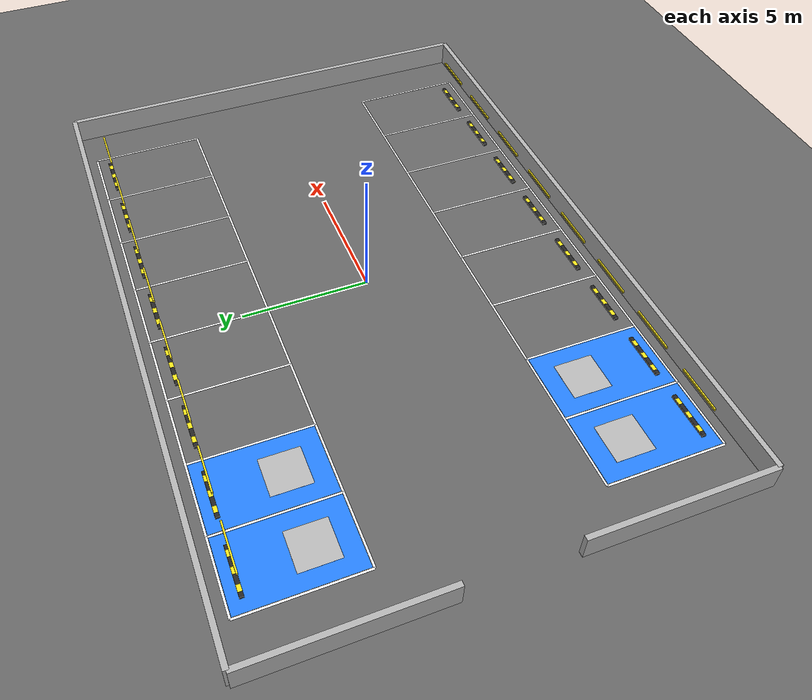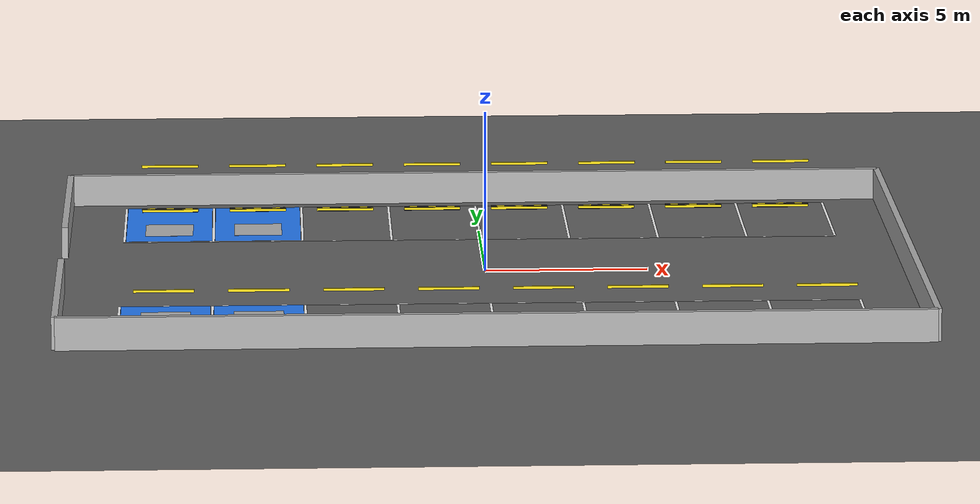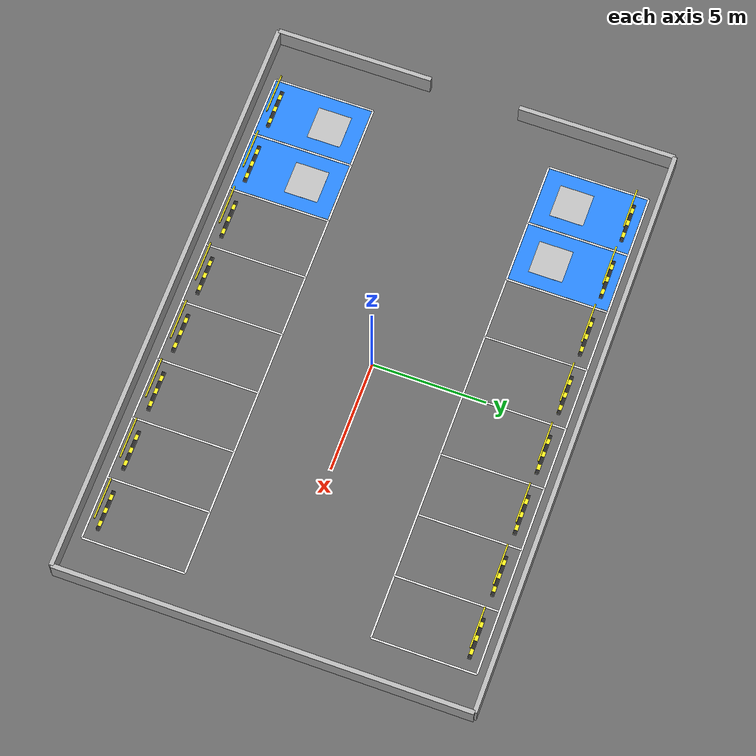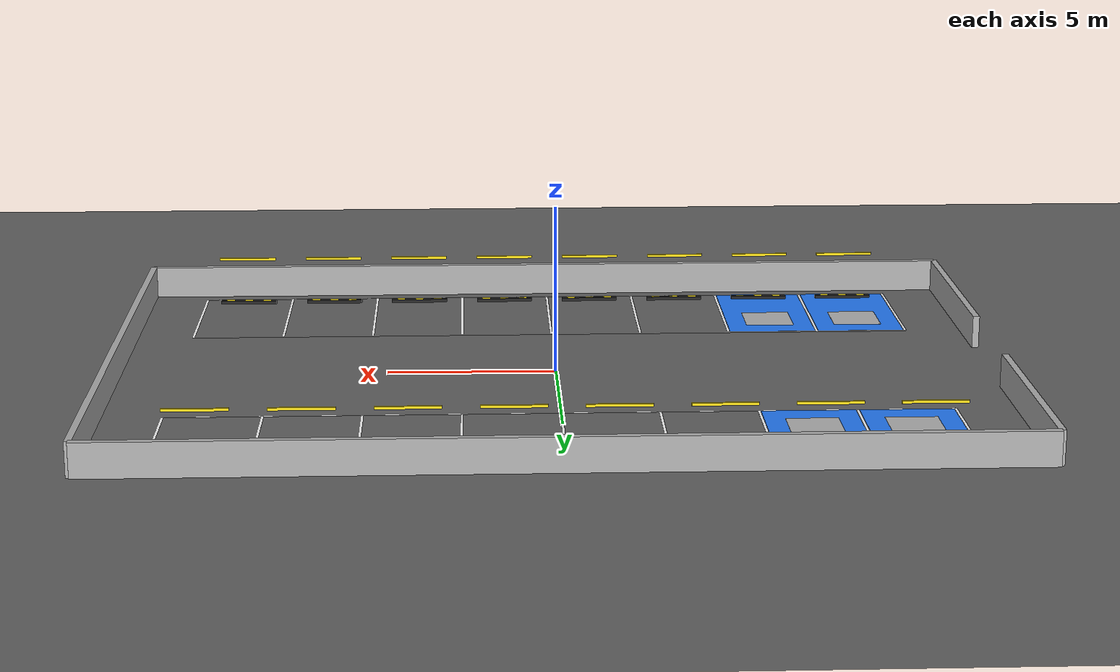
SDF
<sdf version="1.6">
 <world name="parking_lot">
  <physics type="ode">
   <real_time_update_rate>1000.0</real_time_update_rate>
   <max_step_size>0.001</max_step_size>
   <real_time_factor>1</real_time_factor>
  </physics>
  <include><uri>model://sun</uri></include>
  <model name="ground_plane">
   <static>true</static>
   <link name="link">
    <collision name="collision">
     <geometry><plane><normal>0 0 1</normal><size>30 20</size></plane></geometry>
    </collision>
    <visual name="visual">
     <geometry><plane><normal>0 0 1</normal><size>30 20</size></plane></geometry>
     <material><ambient>0.3 0.3 0.3 1</ambient><diffuse>0.4 0.4 0.4 1</diffuse></material>
    </visual>
   </link>
  </model>
  <model name="wall_north">
   <static>true</static>
   <pose>0 9.0 0.5 0 0 0</pose>
   <link name="link">
    <collision name="collision"><geometry><box><size>26 0.2 1.0</size></box></geometry></collision>
    <visual name="visual">
     <geometry><box><size>26 0.2 1.0</size></box></geometry>
     <material><ambient>0.6 0.6 0.6 1</ambient><diffuse>0.7 0.7 0.7 1</diffuse></material>
    </visual>
   </link>
  </model>
  <model name="wall_south">
   <static>true</static>
   <pose>0 -9.0 0.5 0 0 0</pose>
   <link name="link">
    <collision name="collision"><geometry><box><size>26 0.2 1.0</size></box></geometry></collision>
    <visual name="visual">
     <geometry><box><size>26 0.2 1.0</size></box></geometry>
     <material><ambient>0.6 0.6 0.6 1</ambient><diffuse>0.7 0.7 0.7 1</diffuse></material>
    </visual>
   </link>
  </model>
  <model name="wall_east">
   <static>true</static>
   <pose>13.0 0 0.5 0 0 0</pose>
   <link name="link">
    <collision name="collision"><geometry><box><size>0.2 18.0 1.0</size></box></geometry></collision>
    <visual name="visual">
     <geometry><box><size>0.2 18.0 1.0</size></box></geometry>
     <material><ambient>0.6 0.6 0.6 1</ambient><diffuse>0.7 0.7 0.7 1</diffuse></material>
    </visual>
   </link>
  </model>
  <model name="wall_west_top">
   <static>true</static>
   <pose>-13.0 5.5 0.5 0 0 0</pose>
   <link name="link">
    <collision name="collision"><geometry><box><size>0.2 7.0 1.0</size></box></geometry></collision>
    <visual name="visual">
     <geometry><box><size>0.2 7.0 1.0</size></box></geometry>
     <material><ambient>0.6 0.6 0.6 1</ambient><diffuse>0.7 0.7 0.7 1</diffuse></material>
    </visual>
   </link>
  </model>
  <model name="wall_west_bottom">
   <static>true</static>
   <pose>-13.0 -5.5 0.5 0 0 0</pose>
   <link name="link">
    <collision name="collision"><geometry><box><size>0.2 7.0 1.0</size></box></geometry></collision>
    <visual name="visual">
     <geometry><box><size>0.2 7.0 1.0</size></box></geometry>
     <material><ambient>0.6 0.6 0.6 1</ambient><diffuse>0.7 0.7 0.7 1</diffuse></material>
    </visual>
   </link>
  </model>
  <model name="line_a0">
   <static>true</static>
   <pose>-11.2 6.25 0.001 0 0 0</pose>
   <link name="link">
    <visual name="v">
     <geometry><box><size>0.08 4.5 0.002</size></box></geometry>
     <material><ambient>1 1 1 1</ambient><diffuse>1 1 1 1</diffuse></material>
    </visual>
   </link>
  </model>
  <model name="line_a1">
   <static>true</static>
   <pose>-8.4 6.25 0.001 0 0 0</pose>
   <link name="link">
    <visual name="v">
     <geometry><box><size>0.08 4.5 0.002</size></box></geometry>
     <material><ambient>1 1 1 1</ambient><diffuse>1 1 1 1</diffuse></material>
    </visual>
   </link>
  </model>
  <model name="line_a2">
   <static>true</static>
   <pose>-5.6 6.25 0.001 0 0 0</pose>
   <link name="link">
    <visual name="v">
     <geometry><box><size>0.08 4.5 0.002</size></box></geometry>
     <material><ambient>1 1 1 1</ambient><diffuse>1 1 1 1</diffuse></material>
    </visual>
   </link>
  </model>
  <model name="line_a3">
   <static>true</static>
   <pose>-2.8 6.25 0.001 0 0 0</pose>
   <link name="link">
    <visual name="v">
     <geometry><box><size>0.08 4.5 0.002</size></box></geometry>
     <material><ambient>1 1 1 1</ambient><diffuse>1 1 1 1</diffuse></material>
    </visual>
   </link>
  </model>
  <model name="line_a4">
   <static>true</static>
   <pose>0.0 6.25 0.001 0 0 0</pose>
   <link name="link">
    <visual name="v">
     <geometry><box><size>0.08 4.5 0.002</size></box></geometry>
     <material><ambient>1 1 1 1</ambient><diffuse>1 1 1 1</diffuse></material>
    </visual>
   </link>
  </model>
  <model name="line_a5">
   <static>true</static>
   <pose>2.8 6.25 0.001 0 0 0</pose>
   <link name="link">
    <visual name="v">
     <geometry><box><size>0.08 4.5 0.002</size></box></geometry>
     <material><ambient>1 1 1 1</ambient><diffuse>1 1 1 1</diffuse></material>
    </visual>
   </link>
  </model>
  <model name="line_a6">
   <static>true</static>
   <pose>5.6 6.25 0.001 0 0 0</pose>
   <link name="link">
    <visual name="v">
     <geometry><box><size>0.08 4.5 0.002</size></box></geometry>
     <material><ambient>1 1 1 1</ambient><diffuse>1 1 1 1</diffuse></material>
    </visual>
   </link>
  </model>
  <model name="line_a7">
   <static>true</static>
   <pose>8.4 6.25 0.001 0 0 0</pose>
   <link name="link">
    <visual name="v">
     <geometry><box><size>0.08 4.5 0.002</size></box></geometry>
     <material><ambient>1 1 1 1</ambient><diffuse>1 1 1 1</diffuse></material>
    </visual>
   </link>
  </model>
  <model name="line_a8">
   <static>true</static>
   <pose>11.2 6.25 0.001 0 0 0</pose>
   <link name="link">
    <visual name="v">
     <geometry><box><size>0.08 4.5 0.002</size></box></geometry>
     <material><ambient>1 1 1 1</ambient><diffuse>1 1 1 1</diffuse></material>
    </visual>
   </link>
  </model>
  <model name="line_a_back">
   <static>true</static>
   <pose>0 8.5 0.001 0 0 0</pose>
   <link name="link">
    <visual name="v">
     <geometry><box><size>22.4 0.08 0.002</size></box></geometry>
     <material><ambient>1 1 1 1</ambient><diffuse>1 1 1 1</diffuse></material>
    </visual>
   </link>
  </model>
  <model name="line_a_front">
   <static>true</static>
   <pose>0 4.0 0.001 0 0 0</pose>
   <link name="link">
    <visual name="v">
     <geometry><box><size>22.4 0.08 0.002</size></box></geometry>
     <material><ambient>1 1 1 1</ambient><diffuse>1 1 1 1</diffuse></material>
    </visual>
   </link>
  </model>
  <model name="line_b0">
   <static>true</static>
   <pose>-11.2 -6.25 0.001 0 0 0</pose>
   <link name="link">
    <visual name="v">
     <geometry><box><size>0.08 4.5 0.002</size></box></geometry>
     <material><ambient>1 1 1 1</ambient><diffuse>1 1 1 1</diffuse></material>
    </visual>
   </link>
  </model>
  <model name="line_b1">
   <static>true</static>
   <pose>-8.4 -6.25 0.001 0 0 0</pose>
   <link name="link">
    <visual name="v">
     <geometry><box><size>0.08 4.5 0.002</size></box></geometry>
     <material><ambient>1 1 1 1</ambient><diffuse>1 1 1 1</diffuse></material>
    </visual>
   </link>
  </model>
  <model name="line_b2">
   <static>true</static>
   <pose>-5.6 -6.25 0.001 0 0 0</pose>
   <link name="link">
    <visual name="v">
     <geometry><box><size>0.08 4.5 0.002</size></box></geometry>
     <material><ambient>1 1 1 1</ambient><diffuse>1 1 1 1</diffuse></material>
    </visual>
   </link>
  </model>
  <model name="line_b3">
   <static>true</static>
   <pose>-2.8 -6.25 0.001 0 0 0</pose>
   <link name="link">
    <visual name="v">
     <geometry><box><size>0.08 4.5 0.002</size></box></geometry>
     <material><ambient>1 1 1 1</ambient><diffuse>1 1 1 1</diffuse></material>
    </visual>
   </link>
  </model>
  <model name="line_b4">
   <static>true</static>
   <pose>0.0 -6.25 0.001 0 0 0</pose>
   <link name="link">
    <visual name="v">
     <geometry><box><size>0.08 4.5 0.002</size></box></geometry>
     <material><ambient>1 1 1 1</ambient><diffuse>1 1 1 1</diffuse></material>
    </visual>
   </link>
  </model>
  <model name="line_b5">
   <static>true</static>
   <pose>2.8 -6.25 0.001 0 0 0</pose>
   <link name="link">
    <visual name="v">
     <geometry><box><size>0.08 4.5 0.002</size></box></geometry>
     <material><ambient>1 1 1 1</ambient><diffuse>1 1 1 1</diffuse></material>
    </visual>
   </link>
  </model>
  <model name="line_b6">
   <static>true</static>
   <pose>5.6 -6.25 0.001 0 0 0</pose>
   <link name="link">
    <visual name="v">
     <geometry><box><size>0.08 4.5 0.002</size></box></geometry>
     <material><ambient>1 1 1 1</ambient><diffuse>1 1 1 1</diffuse></material>
    </visual>
   </link>
  </model>
  <model name="line_b7">
   <static>true</static>
   <pose>8.4 -6.25 0.001 0 0 0</pose>
   <link name="link">
    <visual name="v">
     <geometry><box><size>0.08 4.5 0.002</size></box></geometry>
     <material><ambient>1 1 1 1</ambient><diffuse>1 1 1 1</diffuse></material>
    </visual>
   </link>
  </model>
  <model name="line_b8">
   <static>true</static>
   <pose>11.2 -6.25 0.001 0 0 0</pose>
   <link name="link">
    <visual name="v">
     <geometry><box><size>0.08 4.5 0.002</size></box></geometry>
     <material><ambient>1 1 1 1</ambient><diffuse>1 1 1 1</diffuse></material>
    </visual>
   </link>
  </model>
  <model name="line_b_back">
   <static>true</static>
   <pose>0 -8.5 0.001 0 0 0</pose>
   <link name="link">
    <visual name="v">
     <geometry><box><size>22.4 0.08 0.002</size></box></geometry>
     <material><ambient>1 1 1 1</ambient><diffuse>1 1 1 1</diffuse></material>
    </visual>
   </link>
  </model>
  <model name="line_b_front">
   <static>true</static>
   <pose>0 -4.0 0.001 0 0 0</pose>
   <link name="link">
    <visual name="v">
     <geometry><box><size>22.4 0.08 0.002</size></box></geometry>
     <material><ambient>1 1 1 1</ambient><diffuse>1 1 1 1</diffuse></material>
    </visual>
   </link>
  </model>
  <model name="isa_a1">
   <static>true</static>
   <pose>-9.8 5.5 0.008 0 0 1.5708</pose>
   <link name="link">
    <visual name="visual">
     <geometry><box><size>1.5 1.5 0.002</size></box></geometry>
     <material>
      <script>
       <uri>file://media/materials/scripts/isa_marker.material</uri>
       <uri>file://media/materials/textures/</uri>
       <name>ISAMarker/Diffuse</name>
      </script>
     </material>
    </visual>
   </link>
  </model>
  <model name="isa_a2">
   <static>true</static>
   <pose>-7.0 5.5 0.008 0 0 1.5708</pose>
   <link name="link">
    <visual name="visual">
     <geometry><box><size>1.5 1.5 0.002</size></box></geometry>
     <material>
      <script>
       <uri>file://media/materials/scripts/isa_marker.material</uri>
       <uri>file://media/materials/textures/</uri>
       <name>ISAMarker/Diffuse</name>
      </script>
     </material>
    </visual>
   </link>
  </model>
  <model name="isa_b1">
   <static>true</static>
   <pose>-9.8 -5.5 0.008 0 0 -1.5708</pose>
   <link name="link">
    <visual name="visual">
     <geometry><box><size>1.5 1.5 0.002</size></box></geometry>
     <material>
      <script>
       <uri>file://media/materials/scripts/isa_marker.material</uri>
       <uri>file://media/materials/textures/</uri>
       <name>ISAMarker/Diffuse</name>
      </script>
     </material>
    </visual>
   </link>
  </model>
  <model name="isa_b2">
   <static>true</static>
   <pose>-7.0 -5.5 0.008 0 0 -1.5708</pose>
   <link name="link">
    <visual name="visual">
     <geometry><box><size>1.5 1.5 0.002</size></box></geometry>
     <material>
      <script>
       <uri>file://media/materials/scripts/isa_marker.material</uri>
       <uri>file://media/materials/textures/</uri>
       <name>ISAMarker/Diffuse</name>
      </script>
     </material>
    </visual>
   </link>
  </model>
  <include><uri>model://wheel_stopper</uri><name>num_a1</name><pose>-9.8 8.0 0.05 0 0 0</pose></include>
  <include><uri>model://wheel_stopper</uri><name>num_a2</name><pose>-7.0 8.0 0.05 0 0 0</pose></include>
  <include><uri>model://wheel_stopper</uri><name>num_a3</name><pose>-4.2 8.0 0.05 0 0 0</pose></include>
  <include><uri>model://wheel_stopper</uri><name>num_a4</name><pose>-1.4 8.0 0.05 0 0 0</pose></include>
  <include><uri>model://wheel_stopper</uri><name>num_a5</name><pose>1.4 8.0 0.05 0 0 0</pose></include>
  <include><uri>model://wheel_stopper</uri><name>num_a6</name><pose>4.2 8.0 0.05 0 0 0</pose></include>
  <include><uri>model://wheel_stopper</uri><name>num_a7</name><pose>7.0 8.0 0.05 0 0 0</pose></include>
  <include><uri>model://wheel_stopper</uri><name>num_a8</name><pose>9.8 8.0 0.05 0 0 0</pose></include>
  <include><uri>model://wheel_stopper</uri><name>num_b1</name><pose>-9.8 -8.0 0.05 0 0 0</pose></include>
  <include><uri>model://wheel_stopper</uri><name>num_b2</name><pose>-7.0 -8.0 0.05 0 0 0</pose></include>
  <include><uri>model://wheel_stopper</uri><name>num_b3</name><pose>-4.2 -8.0 0.05 0 0 0</pose></include>
  <include><uri>model://wheel_stopper</uri><name>num_b4</name><pose>-1.4 -8.0 0.05 0 0 0</pose></include>
  <include><uri>model://wheel_stopper</uri><name>num_b5</name><pose>1.4 -8.0 0.05 0 0 0</pose></include>
  <include><uri>model://wheel_stopper</uri><name>num_b6</name><pose>4.2 -8.0 0.05 0 0 0</pose></include>
  <include><uri>model://wheel_stopper</uri><name>num_b7</name><pose>7.0 -8.0 0.05 0 0 0</pose></include>
  <include><uri>model://wheel_stopper</uri><name>num_b8</name><pose>9.8 -8.0 0.05 0 0 0</pose></include>
  <model name="blue_floor_a1">
   <static>true</static>
   <pose>-9.8 6.25 0.005 0 0 0</pose>
   <link name="link">
    <visual name="v">
     <geometry><box><size>2.7 4.4 0.0008</size></box></geometry>
     <material><ambient>0.1 0.35 0.75 1</ambient><diffuse>0.15 0.5 1.0 1</diffuse></material>
    </visual>
   </link>
  </model>
  <model name="blue_floor_a2">
   <static>true</static>
   <pose>-7.0 6.25 0.005 0 0 0</pose>
   <link name="link">
    <visual name="v">
     <geometry><box><size>2.7 4.4 0.0008</size></box></geometry>
     <material><ambient>0.1 0.35 0.75 1</ambient><diffuse>0.15 0.5 1.0 1</diffuse></material>
    </visual>
   </link>
  </model>
  <model name="blue_floor_b1">
   <static>true</static>
   <pose>-9.8 -6.25 0.005 0 0 0</pose>
   <link name="link">
    <visual name="v">
     <geometry><box><size>2.7 4.4 0.0008</size></box></geometry>
     <material><ambient>0.1 0.35 0.75 1</ambient><diffuse>0.15 0.5 1.0 1</diffuse></material>
    </visual>
   </link>
  </model>
  <model name="blue_floor_b2">
   <static>true</static>
   <pose>-7.0 -6.25 0.005 0 0 0</pose>
   <link name="link">
    <visual name="v">
     <geometry><box><size>2.7 4.4 0.0008</size></box></geometry>
     <material><ambient>0.1 0.35 0.75 1</ambient><diffuse>0.15 0.5 1.0 1</diffuse></material>
    </visual>
   </link>
  </model>
 </world>
</sdf>

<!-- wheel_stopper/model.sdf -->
<sdf version="1.6">
  <model name="wheel_stopper">
    <static>true</static>
    <link name="link">
      <!-- 메인 몸체 (검은 고무) -->
      <collision name="body_collision">
        <geometry><box><size>1.8 0.15 0.1</size></box></geometry>
      </collision>
      <visual name="body_visual">
        <geometry><box><size>1.8 0.15 0.1</size></box></geometry>
        <material>
          <ambient>0.1 0.1 0.1 1</ambient>
          <diffuse>0.15 0.15 0.15 1</diffuse>
        </material>
      </visual>

      <!-- 노란 반사 스트라이프 1 (왼쪽) -->
      <visual name="stripe_left">
        <pose>-0.6 0 0.051 0 0 0</pose>
        <geometry><box><size>0.25 0.152 0.002</size></box></geometry>
        <material>
          <ambient>1.0 0.85 0.0 1</ambient>
          <diffuse>1.0 0.9 0.1 1</diffuse>
          <emissive>0.3 0.25 0 1</emissive>
        </material>
      </visual>

      <!-- 노란 반사 스트라이프 2 (가운데) -->
      <visual name="stripe_center">
        <pose>0 0 0.051 0 0 0</pose>
        <geometry><box><size>0.25 0.152 0.002</size></box></geometry>
        <material>
          <ambient>1.0 0.85 0.0 1</ambient>
          <diffuse>1.0 0.9 0.1 1</diffuse>
          <emissive>0.3 0.25 0 1</emissive>
        </material>
      </visual>

      <!-- 노란 반사 스트라이프 3 (오른쪽) -->
      <visual name="stripe_right">
        <pose>0.6 0 0.051 0 0 0</pose>
        <geometry><box><size>0.25 0.152 0.002</size></box></geometry>
        <material>
          <ambient>1.0 0.85 0.0 1</ambient>
          <diffuse>1.0 0.9 0.1 1</diffuse>
          <emissive>0.3 0.25 0 1</emissive>
        </material>
      </visual>

      <!-- 측면 노란 스트라이프 (앞면) -->
      <visual name="stripe_front">
        <pose>0 -0.076 0 0 0 0</pose>
        <geometry><box><size>1.8 0.002 0.08</size></box></geometry>
        <material>
          <ambient>1.0 0.85 0.0 1</ambient>
          <diffuse>1.0 0.9 0.1 1</diffuse>
        </material>
      </visual>

      <!-- LiDAR 반사체: 수평 LiDAR(z=1.5m)에 방지턱이 감지되도록 같은 높이에 배치 -->
      <collision name="lidar_reflector_col">
        <pose>0 0 1.45 0 0 0</pose>
        <geometry><box><size>1.8 0.06 0.08</size></box></geometry>
      </collision>
      <visual name="lidar_reflector_vis">
        <pose>0 0 1.45 0 0 0</pose>
        <geometry><box><size>1.8 0.06 0.08</size></box></geometry>
        <material>
          <ambient>1.0 0.85 0.0 1</ambient>
          <diffuse>1.0 0.9 0.1 1</diffuse>
          <emissive>0.4 0.3 0.0 1</emissive>
        </material>
      </visual>
    </link>
  </model>
</sdf>
